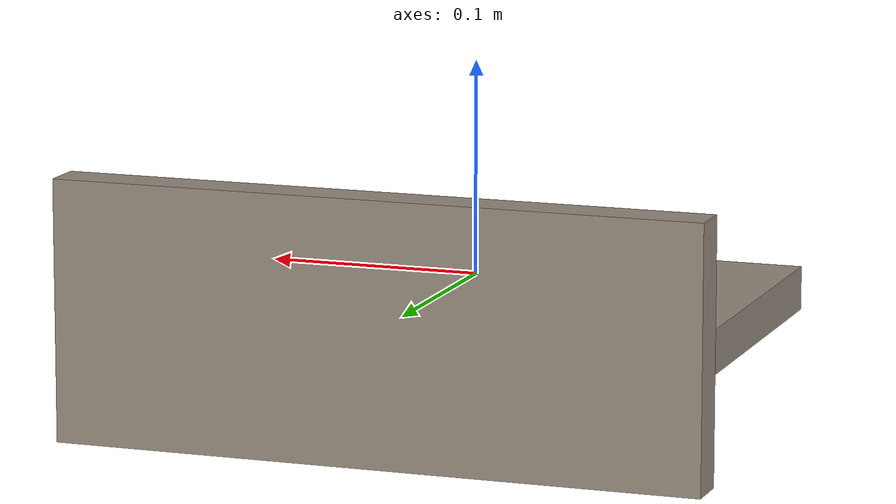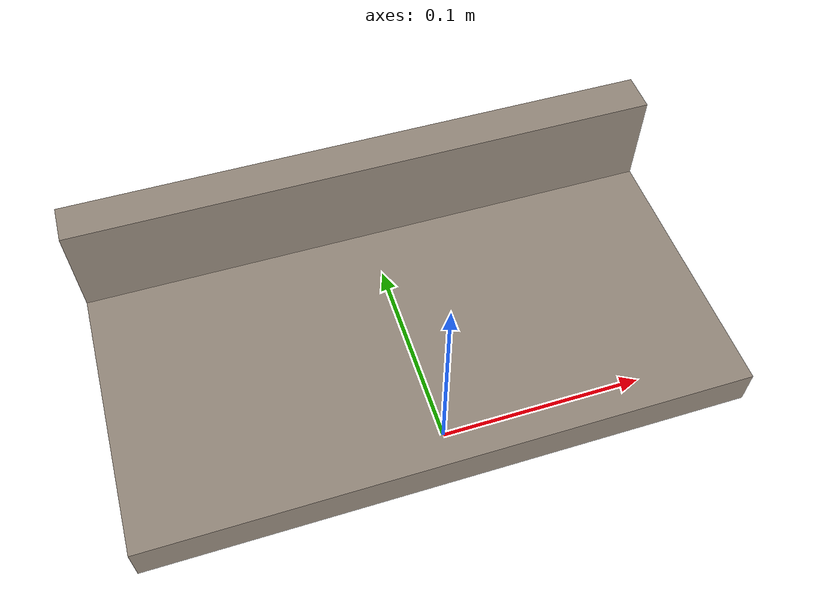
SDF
<?xml version='1.0'?>
<sdf version='1.7'>
  <model name='shelf1'>
    <link name='link_1'>
      <kinematic>1</kinematic>
      <inertial>
        <pose>0 0 -0.15 0 -0 0</pose>
        <inertia>
          <ixx>0.00541667</ixx>
          <iyy>0.0520833</iyy>
          <izz>0.0470833</izz>
          <ixy>0</ixy>
          <ixz>0</ixz>
          <iyz>0</iyz>
        </inertia>
        <mass>1</mass>
      </inertial>
      <self_collide>0</self_collide>
      <enable_wind>0</enable_wind>
      <pose>0 0 0 0 -0 0</pose>
      <gravity>1</gravity>
      <visual name='visual1'>
        <geometry>
          <box>
            <size>0.3 0.14 0.02</size>
          </box>
        </geometry>
        <material>
          <ambient>0.8 0.35 0.5 1</ambient>
          <diffuse>0.6 0.55 0.5 1</diffuse>
          <shader type='pixel'>
            <normal_map>__default__</normal_map>
          </shader>
          <script>
            <name>ModelPreview_3::link_1::visual1_MATERIAL_</name>
            <uri>__default__</uri>
          </script>
          <specular>0 0 0 1</specular>
          <emissive>0 0 0 1</emissive>
        </material>
        <pose>0 0.05 0 0 -0 0</pose>
        <transparency>0</transparency>
        <cast_shadows>1</cast_shadows>
      </visual>
      <visual name='visual2'>
        <pose>0 0.13 0 0 -0 0</pose>
        <geometry>
          <box>
            <size>0.3 0.02 0.12</size>
          </box>
        </geometry>
        <material>
          <ambient>0.8 0.35 0.5 1</ambient>
          <diffuse>0.6 0.55 0.5 1</diffuse>
          <shader type='pixel'>
            <normal_map>__default__</normal_map>
          </shader>
          <script>
            <name>ModelPreview_3::link_1::visual2_MATERIAL_</name>
            <uri>__default__</uri>
          </script>
          <specular>0 0 0 1</specular>
          <emissive>0 0 0 1</emissive>
        </material>
        <transparency>0</transparency>
        <cast_shadows>1</cast_shadows>
      </visual>
      <collision name='collision1'>
        <laser_retro>0</laser_retro>
        <max_contacts>10</max_contacts>
        <pose>0 0.05 0 0 -0 0</pose>
        <geometry>
          <box>
            <size>0.3 0.14 0.02</size>
          </box>
        </geometry>
        <surface>
          <friction>
            <ode>
              <mu>1</mu>
              <mu2>1</mu2>
              <fdir1>0 0 0</fdir1>
              <slip1>0</slip1>
              <slip2>0</slip2>
            </ode>
            <torsional>
              <coefficient>1</coefficient>
              <patch_radius>0</patch_radius>
              <surface_radius>0</surface_radius>
              <use_patch_radius>1</use_patch_radius>
              <ode>
                <slip>0</slip>
              </ode>
            </torsional>
          </friction>
          <bounce>
            <restitution_coefficient>0</restitution_coefficient>
            <threshold>1e+06</threshold>
          </bounce>
          <contact>
            <collide_without_contact>0</collide_without_contact>
            <collide_without_contact_bitmask>1</collide_without_contact_bitmask>
            <collide_bitmask>1</collide_bitmask>
            <ode>
              <soft_cfm>0</soft_cfm>
              <soft_erp>0.2</soft_erp>
              <kp>1e+15</kp>
              <kd>1e+12</kd>
              <max_vel>0.01</max_vel>
              <min_depth>0</min_depth>
            </ode>
            <bullet>
              <split_impulse>1</split_impulse>
              <split_impulse_penetration_threshold>-0.01</split_impulse_penetration_threshold>
              <soft_cfm>0</soft_cfm>
              <soft_erp>0.2</soft_erp>
              <kp>1e+15</kp>
              <kd>1e+12</kd>
            </bullet>
          </contact>
        </surface>
      </collision>
      <collision name='collision2'>
        <laser_retro>0</laser_retro>
        <max_contacts>10</max_contacts>
        <pose>0 0.13 0 0 -0 0</pose>
        <geometry>
          <box>
            <size>0.3 0.02 0.12</size>
          </box>
        </geometry>
        <surface>
          <friction>
            <ode>
              <mu>1</mu>
              <mu2>1</mu2>
              <fdir1>0 0 0</fdir1>
              <slip1>0</slip1>
              <slip2>0</slip2>
            </ode>
            <torsional>
              <coefficient>1</coefficient>
              <patch_radius>0</patch_radius>
              <surface_radius>0</surface_radius>
              <use_patch_radius>1</use_patch_radius>
              <ode>
                <slip>0</slip>
              </ode>
            </torsional>
          </friction>
          <bounce>
            <restitution_coefficient>0</restitution_coefficient>
            <threshold>1e+06</threshold>
          </bounce>
          <contact>
            <collide_without_contact>0</collide_without_contact>
            <collide_without_contact_bitmask>1</collide_without_contact_bitmask>
            <collide_bitmask>1</collide_bitmask>
            <ode>
              <soft_cfm>0</soft_cfm>
              <soft_erp>0.2</soft_erp>
              <kp>1e+15</kp>
              <kd>1e+12</kd>
              <max_vel>0.01</max_vel>
              <min_depth>0</min_depth>
            </ode>
            <bullet>
              <split_impulse>1</split_impulse>
              <split_impulse_penetration_threshold>-0.01</split_impulse_penetration_threshold>
              <soft_cfm>0</soft_cfm>
              <soft_erp>0.2</soft_erp>
              <kp>1e+15</kp>
              <kd>1e+12</kd>
            </bullet>
          </contact>
        </surface>
      </collision>
    </link>
    <static>0</static>
    <allow_auto_disable>1</allow_auto_disable>
  </model>
</sdf>
